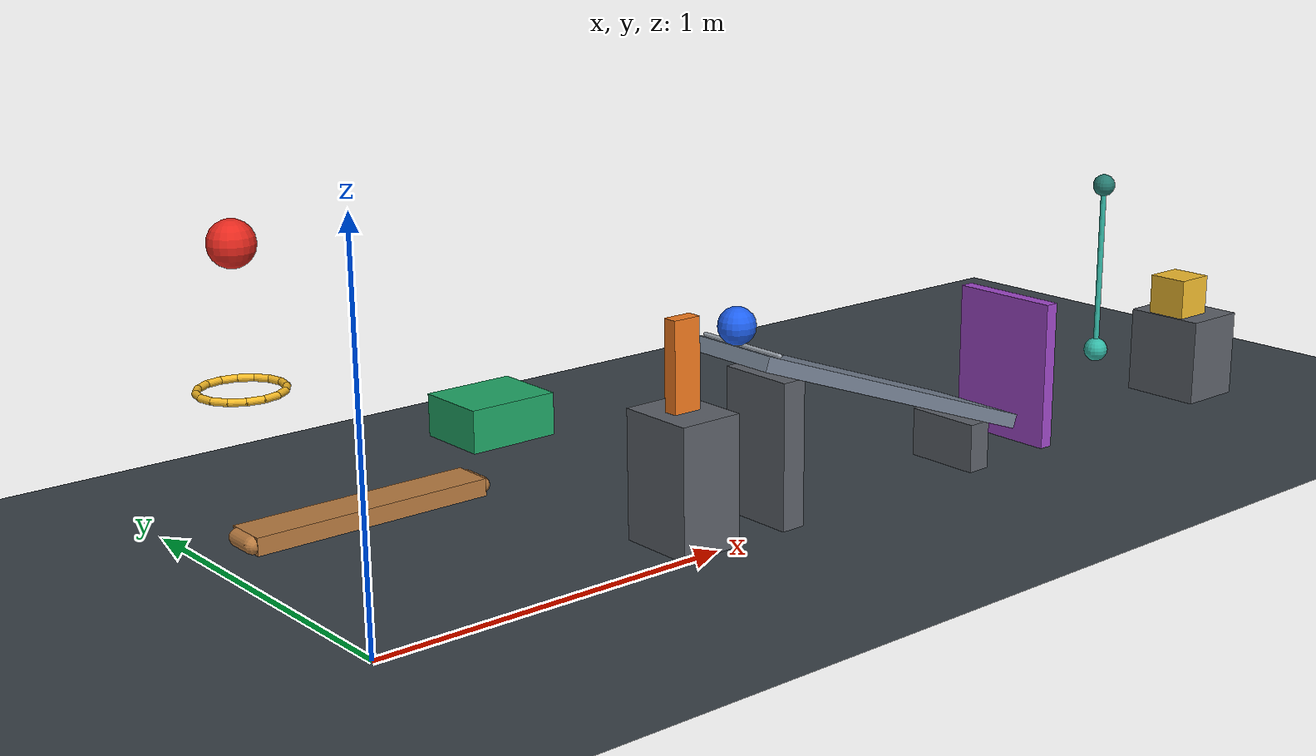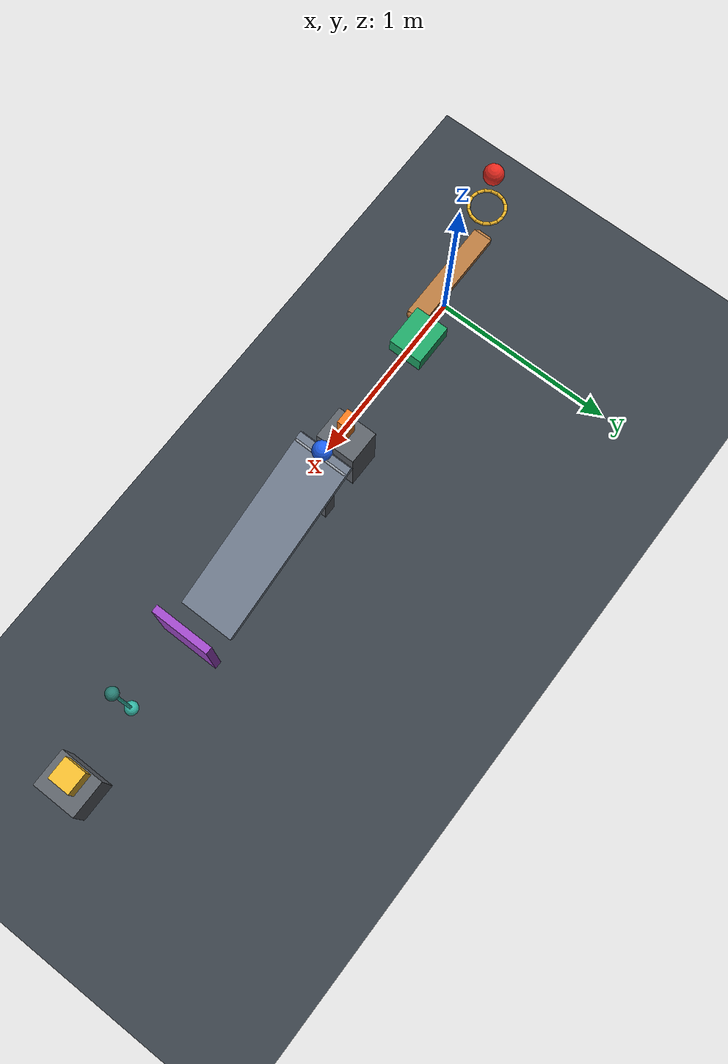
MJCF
<mujoco model="passive_chain_reaction">
  <compiler angle="degree" autolimits="true" inertiafromgeom="auto"/>
  <option timestep="0.002" gravity="0 0 -9.81" integrator="implicitfast" solver="Newton" cone="elliptic" iterations="100" tolerance="1e-10"/>

  <!-- Sliding friction is 0.72. Small torsional and rolling friction help the balls settle. -->
  <!-- solref damping ratio 0.716 approximates restitution 0.04; restitution is not a direct MJCF parameter. -->
  <!-- All initial generalized velocities are zero. No actuators or time-dependent controls are used. -->

  <visual>
    <headlight ambient="0.35 0.35 0.35" diffuse="0.7 0.7 0.7" specular="0.2 0.2 0.2"/>
  </visual>

  <worldbody>
    <light name="scene_light" pos="1 -2 4" dir="0 0 -1" directional="true"/>
    <camera name="overview" pos="1.4 -4.5 2.8" xyaxes="1 0 0 0 0.45 0.893"/>

    <geom name="floor" type="plane" pos="0 0 0" size="6 4 0.1" friction="0.72 0.005 0.002" condim="6" solref="0.008 0.716" solimp="0.95 0.99 0.001" rgba="0.22 0.25 0.28 1"/>

    <!-- Ring plane is 0.30 m below ball1's initial center.
         From this plane, the center falls another 0.25 m before lever contact. -->
    <body name="ball1" pos="-0.265 0 0.970">
      <freejoint name="ball1_free"/>
      <geom name="ball1_sphere" type="sphere" size="0.05" mass="0.20" friction="0.72 0.005 0.002" condim="6" solref="0.008 0.716" solimp="0.95 0.99 0.001" rgba="0.9 0.16 0.12 1"/>
    </body>

    <!-- Sixteen capsules form a horizontal ring with approximately 0.160 m clear diameter. -->
    <body name="ring1" pos="-0.265 0 0.670">
      <geom name="ring1_segment00" type="capsule" fromto="0.089724 0 0 0.082894 0.034336 0" size="0.008" friction="0.72 0.005 0.002" condim="6" solref="0.008 0.716" solimp="0.95 0.99 0.001" rgba="0.95 0.72 0.15 1"/>
      <geom name="ring1_segment01" type="capsule" fromto="0.082894 0.034336 0 0.063444 0.063444 0" size="0.008" friction="0.72 0.005 0.002" condim="6" solref="0.008 0.716" solimp="0.95 0.99 0.001" rgba="0.95 0.72 0.15 1"/>
      <geom name="ring1_segment02" type="capsule" fromto="0.063444 0.063444 0 0.034336 0.082894 0" size="0.008" friction="0.72 0.005 0.002" condim="6" solref="0.008 0.716" solimp="0.95 0.99 0.001" rgba="0.95 0.72 0.15 1"/>
      <geom name="ring1_segment03" type="capsule" fromto="0.034336 0.082894 0 0 0.089724 0" size="0.008" friction="0.72 0.005 0.002" condim="6" solref="0.008 0.716" solimp="0.95 0.99 0.001" rgba="0.95 0.72 0.15 1"/>
      <geom name="ring1_segment04" type="capsule" fromto="0 0.089724 0 -0.034336 0.082894 0" size="0.008" friction="0.72 0.005 0.002" condim="6" solref="0.008 0.716" solimp="0.95 0.99 0.001" rgba="0.95 0.72 0.15 1"/>
      <geom name="ring1_segment05" type="capsule" fromto="-0.034336 0.082894 0 -0.063444 0.063444 0" size="0.008" friction="0.72 0.005 0.002" condim="6" solref="0.008 0.716" solimp="0.95 0.99 0.001" rgba="0.95 0.72 0.15 1"/>
      <geom name="ring1_segment06" type="capsule" fromto="-0.063444 0.063444 0 -0.082894 0.034336 0" size="0.008" friction="0.72 0.005 0.002" condim="6" solref="0.008 0.716" solimp="0.95 0.99 0.001" rgba="0.95 0.72 0.15 1"/>
      <geom name="ring1_segment07" type="capsule" fromto="-0.082894 0.034336 0 -0.089724 0 0" size="0.008" friction="0.72 0.005 0.002" condim="6" solref="0.008 0.716" solimp="0.95 0.99 0.001" rgba="0.95 0.72 0.15 1"/>
      <geom name="ring1_segment08" type="capsule" fromto="-0.089724 0 0 -0.082894 -0.034336 0" size="0.008" friction="0.72 0.005 0.002" condim="6" solref="0.008 0.716" solimp="0.95 0.99 0.001" rgba="0.95 0.72 0.15 1"/>
      <geom name="ring1_segment09" type="capsule" fromto="-0.082894 -0.034336 0 -0.063444 -0.063444 0" size="0.008" friction="0.72 0.005 0.002" condim="6" solref="0.008 0.716" solimp="0.95 0.99 0.001" rgba="0.95 0.72 0.15 1"/>
      <geom name="ring1_segment10" type="capsule" fromto="-0.063444 -0.063444 0 -0.034336 -0.082894 0" size="0.008" friction="0.72 0.005 0.002" condim="6" solref="0.008 0.716" solimp="0.95 0.99 0.001" rgba="0.95 0.72 0.15 1"/>
      <geom name="ring1_segment11" type="capsule" fromto="-0.034336 -0.082894 0 0 -0.089724 0" size="0.008" friction="0.72 0.005 0.002" condim="6" solref="0.008 0.716" solimp="0.95 0.99 0.001" rgba="0.95 0.72 0.15 1"/>
      <geom name="ring1_segment12" type="capsule" fromto="0 -0.089724 0 0.034336 -0.082894 0" size="0.008" friction="0.72 0.005 0.002" condim="6" solref="0.008 0.716" solimp="0.95 0.99 0.001" rgba="0.95 0.72 0.15 1"/>
      <geom name="ring1_segment13" type="capsule" fromto="0.034336 -0.082894 0 0.063444 -0.063444 0" size="0.008" friction="0.72 0.005 0.002" condim="6" solref="0.008 0.716" solimp="0.95 0.99 0.001" rgba="0.95 0.72 0.15 1"/>
      <geom name="ring1_segment14" type="capsule" fromto="0.063444 -0.063444 0 0.082894 -0.034336 0" size="0.008" friction="0.72 0.005 0.002" condim="6" solref="0.008 0.716" solimp="0.95 0.99 0.001" rgba="0.95 0.72 0.15 1"/>
      <geom name="ring1_segment15" type="capsule" fromto="0.082894 -0.034336 0 0.089724 0 0" size="0.008" friction="0.72 0.005 0.002" condim="6" solref="0.008 0.716" solimp="0.95 0.99 0.001" rgba="0.95 0.72 0.15 1"/>
    </body>

    <!-- Rounded ends preserve the lever's 0.60 x 0.10 x 0.04 m overall envelope. -->
    <body name="lever1" pos="0 0 0.350">
      <joint name="lever1_hinge" type="hinge" axis="0 -1 0" range="0 45" damping="0.04" solreflimit="0.004 1" solimplimit="0.99 0.999 0.001"/>
      <geom name="lever1_bar" type="box" size="0.28 0.05 0.02" mass="0.48" friction="0.72 0.005 0.002" condim="6" solref="0.008 0.716" solimp="0.95 0.99 0.001" rgba="0.72 0.48 0.25 1"/>
      <geom name="lever1_left_end" type="capsule" fromto="-0.28 -0.03 0 -0.28 0.03 0" size="0.02" mass="0.01" friction="0.72 0.005 0.002" condim="6" solref="0.008 0.716" solimp="0.95 0.99 0.001" rgba="0.72 0.48 0.25 1"/>
      <geom name="lever1_right_end" type="capsule" fromto="0.28 -0.03 0 0.28 0.03 0" size="0.02" mass="0.01" friction="0.72 0.005 0.002" condim="6" solref="0.008 0.716" solimp="0.95 0.99 0.001" rgba="0.72 0.48 0.25 1"/>
    </body>

    <!-- The rounded lever end strikes the cart's lower-left corner.
         The slide joint supplies its horizontal guide; no frictional rail is added. -->
    <body name="cart1" pos="0.40306668 0.10 0.45862149">
      <joint name="cart1_slide" type="slide" axis="1 0 0" range="0 0.50" damping="0.20" solreflimit="0.004 1" solimplimit="0.99 0.999 0.001"/>
      <geom name="cart1_box" type="box" size="0.11 0.09 0.05" mass="0.50" friction="0.72 0.005 0.002" condim="6" solref="0.008 0.716" solimp="0.95 0.99 0.001" rgba="0.12 0.65 0.40 1"/>
    </body>

    <body name="domino_support" pos="0.97306668 0.10 0.175">
      <geom name="domino_support_box" type="box" size="0.09 0.11 0.175" friction="0.72 0.005 0.002" condim="6" solref="0.008 0.716" solimp="0.95 0.99 0.001" rgba="0.36 0.38 0.41 1"/>
    </body>

    <!-- Cart-to-domino face clearance is exactly 0.42 m initially. -->
    <body name="domino1" pos="0.97306668 0.10 0.470">
      <freejoint name="domino1_free"/>
      <geom name="domino1_box" type="box" size="0.04 0.02 0.12" mass="0.25" friction="0.72 0.005 0.002" condim="6" solref="0.008 0.716" solimp="0.95 0.99 0.001" rgba="0.95 0.48 0.12 1"/>
    </body>

    <!-- Domino and ball centers are separated by 0.18 m along the cascade. -->
    <body name="ball2" pos="1.15306668 0.10 0.536130">
      <freejoint name="ball2_free"/>
      <geom name="ball2_sphere" type="sphere" size="0.05" mass="0.20" friction="0.72 0.005 0.002" condim="6" solref="0.008 0.716" solimp="0.95 0.99 0.001" rgba="0.12 0.38 0.94 1"/>
    </body>

    <body name="ramp1" pos="0 0 0">
      <geom name="ramp1_surface" type="box" pos="1.59107259 0.10 0.30221622" quat="0.984807753 0 0.173648178 0" size="0.50 0.15 0.02" friction="0.72 0.005 0.002" condim="6" solref="0.008 0.716" solimp="0.95 0.99 0.001" rgba="0.48 0.53 0.60 1"/>
      <geom name="ramp1_launch_lip" type="capsule" fromto="1.170570 -0.04 0.482935 1.170570 0.24 0.482935" size="0.006" friction="0.72 0.005 0.002" condim="6" solref="0.008 0.716" solimp="0.95 0.99 0.001" rgba="0.65 0.68 0.72 1"/>
      <geom name="ramp1_high_leg" type="box" pos="1.25 0.10 0.1985" size="0.035 0.11 0.1985" friction="0.72 0.005 0.002" condim="6" solref="0.008 0.716" solimp="0.95 0.99 0.001" rgba="0.36 0.38 0.41 1"/>
      <geom name="ramp1_low_leg" type="box" pos="1.96 0.10 0.069" size="0.035 0.11 0.069" friction="0.72 0.005 0.002" condim="6" solref="0.008 0.716" solimp="0.95 0.99 0.001" rgba="0.36 0.38 0.41 1"/>
    </body>

    <body name="door1" pos="2.18775930 0.10 0.030">
      <inertial pos="0 0 0.390" mass="0.45" diaginertia="0.0041 0.00035 0.0040"/>
      <joint name="door1_hinge" type="hinge" axis="0 1 0" range="0 70" damping="0.04" solreflimit="0.004 1" solimplimit="0.99 0.999 0.001"/>
      <geom name="door1_panel" type="box" pos="0 0 0.21" size="0.02 0.16 0.21" density="0" friction="0.72 0.005 0.002" condim="6" solref="0.008 0.716" solimp="0.95 0.99 0.001" rgba="0.62 0.28 0.78 1"/>
    </body>

    <!-- Rigid pendulum: 0.50 m pivot-to-striker-center length and 0.35 kg total.
         The explicit inertia represents a heavy pivot hub and lighter distal striker. -->
    <body name="pendulum1" pos="2.59605930 0.10 0.7125">
      <inertial pos="0 0 -0.10" mass="0.35" diaginertia="0.014 0.014 0.00015"/>
      <joint name="pendulum1_hinge" type="hinge" axis="0 -1 0" range="0 38" damping="0.04" solreflimit="0.004 1" solimplimit="0.99 0.999 0.001"/>
      <geom name="pendulum1_rod" type="capsule" fromto="0 0 0 0 0 -0.50" size="0.008" density="0" friction="0.72 0.005 0.002" condim="6" solref="0.008 0.716" solimp="0.95 0.99 0.001" rgba="0.20 0.72 0.65 1"/>
      <geom name="pendulum1_hub" type="sphere" pos="0 0 0" size="0.032" density="0" friction="0.72 0.005 0.002" condim="6" solref="0.008 0.716" solimp="0.95 0.99 0.001" rgba="0.15 0.48 0.44 1"/>
      <geom name="pendulum1_striker" type="sphere" pos="0 0 -0.50" size="0.035" density="0" friction="0.72 0.005 0.002" condim="6" solref="0.008 0.716" solimp="0.95 0.99 0.001" rgba="0.20 0.72 0.65 1"/>
    </body>

    <body name="block_support" pos="3.02844001 0.10 0.12924731">
      <geom name="block_support_box" type="box" size="0.10 0.12 0.12924731" friction="0.72 0.005 0.002" condim="6" solref="0.008 0.716" solimp="0.95 0.99 0.001" rgba="0.36 0.38 0.41 1"/>
    </body>

    <!-- Contact begins just before the 38-degree stop, leaving a small striking stroke. -->
    <body name="block1" pos="2.99544001 0.10 0.31849462">
      <freejoint name="block1_free"/>
      <geom name="block1_box" type="box" size="0.06 0.06 0.06" mass="0.35" friction="0.72 0.005 0.002" condim="6" solref="0.008 0.716" solimp="0.95 0.99 0.001" rgba="0.94 0.73 0.18 1"/>
    </body>
  </worldbody>

  <keyframe>
    <key name="start" time="0" qvel="0 0 0 0 0 0 0 0 0 0 0 0 0 0 0 0 0 0 0 0 0 0 0 0 0 0 0 0"/>
  </keyframe>
</mujoco>
